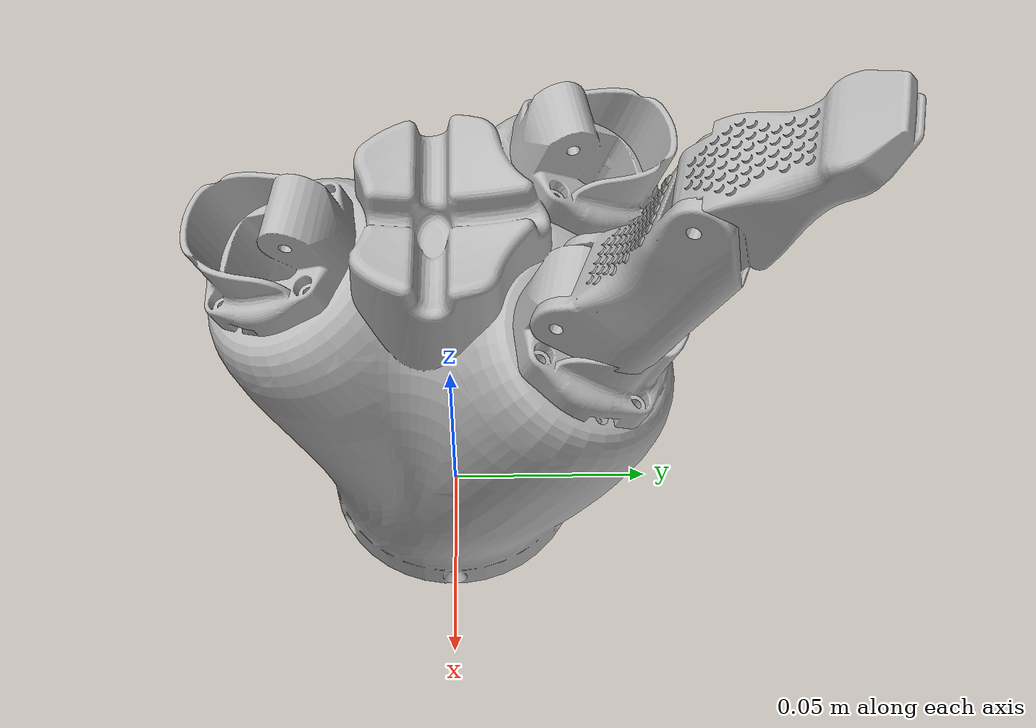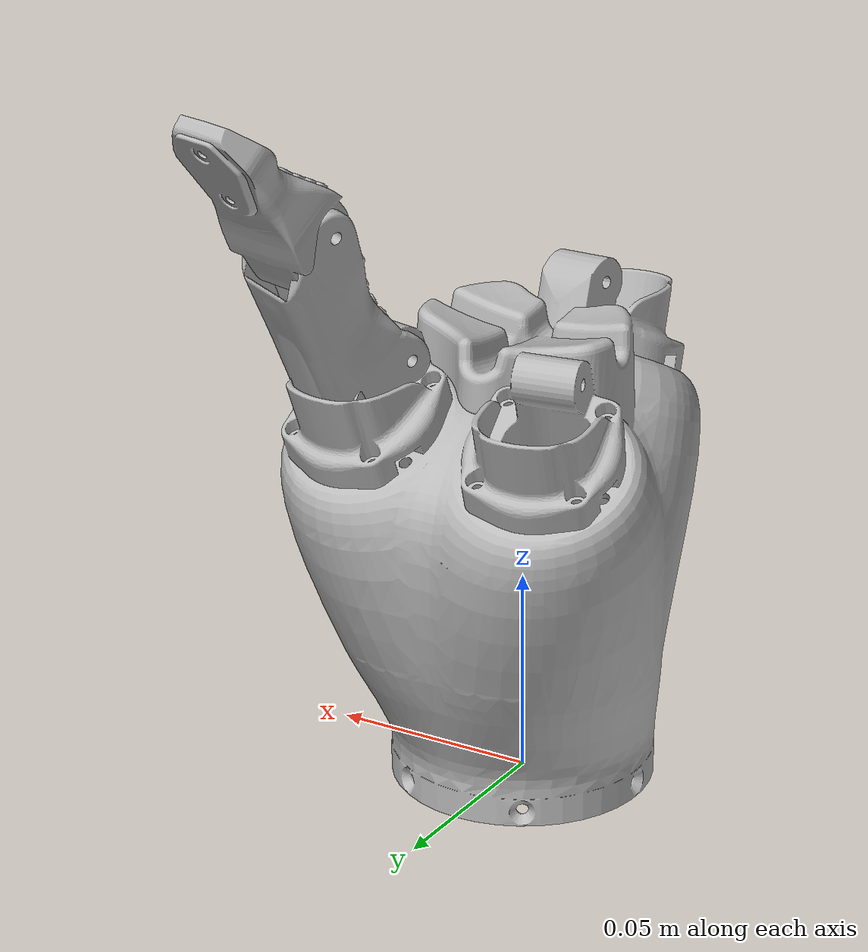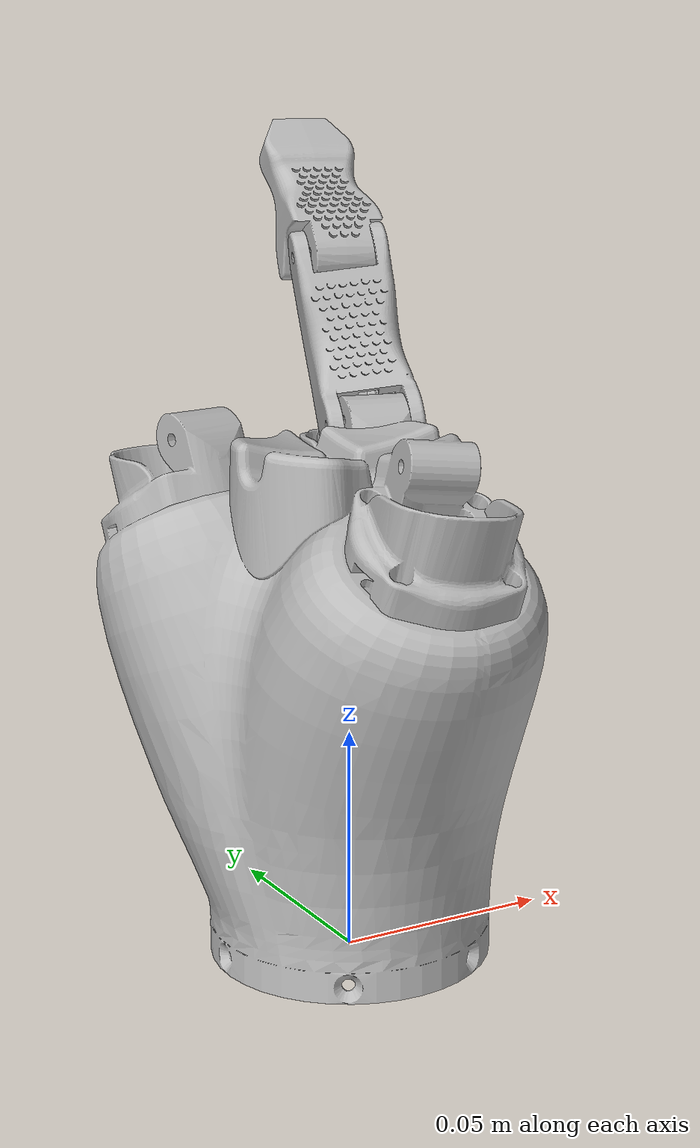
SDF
<?xml version="1.0"?>
<sdf version='1.5'>
  <model name='kinova_kg3'>
    <link name='jaco_link_hand'>
      <pose frame=''>0 0 0 0 -0 0</pose>
      <inertial>
        <pose frame=''>-0.000227691 0.00425469 0.0759514 0 -0 0</pose>
        <mass>0.121635</mass>
        <inertia>
          <ixx>0.000215057</ixx>
          <ixy>1.82062e-08</ixy>
          <ixz>1.11116e-07</ixz>
          <iyy>0.00018746</iyy>
          <iyz>1.20191e-06</iyz>
          <izz>0.000158164</izz>
        </inertia>
      </inertial>
      <collision name='jaco_link_hand_collision'>
        <pose frame=''>0 0 0 0 -0 0</pose>
        <geometry>
          <mesh>
            <scale>1 1 1</scale>
            <uri>model://kinova_kg3/meshes/jaco_link_hand.STL</uri>
          </mesh>
        </geometry>
      </collision>
      <visual name='jaco_link_hand_visual'>
        <pose frame=''>0 0 0 0 -0 0</pose>
        <geometry>
          <mesh>
            <scale>1 1 1</scale>
            <uri>model://kinova_kg3/meshes/jaco_link_hand.STL</uri>
          </mesh>
        </geometry>
      </visual>
    </link>

    <link name='jaco_link_finger_2'>
      <pose frame=''>0.0216845 0.0270991 0.114669 1.56248 -0.979965 1.39417</pose>
      <inertial>
        <pose frame=''>0.0208281 -0.00622581 -1.06167e-07 0 -0 0</pose>
        <mass>0.00888494</mass>
        <inertia>
          <ixx>1.04332e-06</ixx>
          <ixy>1.35201e-07</ixy>
          <ixz>-1.63982e-11</ixz>
          <iyy>2.40167e-06</iyy>
          <iyz>-2.0631e-12</iyz>
          <izz>2.18919e-06</izz>
        </inertia>
      </inertial>
      <collision name='jaco_link_finger_2_collision'>
        <pose frame=''>0 0 0 0 -0 0</pose>
        <geometry>
          <mesh>
            <scale>1 1 1</scale>
            <uri>model://kinova_kg3/meshes/jaco_link_finger_2.STL</uri>
          </mesh>
        </geometry>
      </collision>
      <visual name='jaco_link_finger_2_visual'>
        <pose frame=''>0 0 0 0 -0 0</pose>
        <geometry>
          <mesh>
            <scale>1 1 1</scale>
            <uri>model://kinova_kg3/meshes/jaco_link_finger_2.STL</uri>
          </mesh>
        </geometry>
      </visual>
    </link>

    <joint name='jaco_joint_finger_2' type='revolute'>
      <child>jaco_link_finger_2</child>
      <parent>jaco_link_hand</parent>
      <axis>
        <xyz>0.983195 -0.1825 0.00463032</xyz>
        <limit>
          <lower>0</lower>
          <upper>0.872665</upper>
          <effort>30</effort>
          <velocity>5</velocity>
        </limit>
        <dynamics>
          <spring_reference>0</spring_reference>
          <spring_stiffness>0</spring_stiffness>
        </dynamics>
        <use_parent_model_frame>1</use_parent_model_frame>
      </axis>
    </joint>

    <link name='jaco_link_finger_tip_2'>
      <pose frame=''>0.0260012 0.0512841 0.151295 1.56248 -0.979965 1.39417</pose>
      <inertial>
        <pose frame=''>0.0140499 -0.00605434 2.02852e-07 0 -0 0</pose>
        <mass>0.0124078</mass>
        <inertia>
          <ixx>6.83326e-07</ixx>
          <ixy>-2.81123e-07</ixy>
          <ixz>-7.46392e-12</ixz>
          <iyy>2.46927e-06</iyy>
          <iyz>1.87459e-11</iyz>
          <izz>2.36577e-06</izz>
        </inertia>
      </inertial>
      <collision name='jaco_link_finger_tip_2_collision'>
        <pose frame=''>0 0 0 0 -0 0</pose>
        <geometry>
          <mesh>
            <scale>1 1 1</scale>
            <uri>model://kinova_kg3/meshes/jaco_link_finger_tip_2.STL</uri>
          </mesh>
        </geometry>
      </collision>
      <visual name='jaco_link_finger_tip_2_visual'>
        <pose frame=''>0 0 0 0 -0 0</pose>
        <geometry>
          <mesh>
            <scale>1 1 1</scale>
            <uri>model://kinova_kg3/meshes/jaco_link_finger_tip_2.STL</uri>
          </mesh>
        </geometry>
      </visual>
    </link>

    <joint name='jaco_joint_finger_tip_2' type='revolute'>
      <child>jaco_link_finger_tip_2</child>
      <parent>jaco_link_finger_2</parent>
      <axis>
        <xyz>0.983195 -0.1825 0.00463032</xyz>
        <limit>
          <lower>0</lower>
          <upper>0.872665</upper>
          <effort>30</effort>
          <velocity>5</velocity>
        </limit>
        <dynamics>
          <spring_reference>0</spring_reference>
          <spring_stiffness>0</spring_stiffness>
        </dynamics>
        <use_parent_model_frame>1</use_parent_model_frame>
      </axis>
    </joint>

    <link name='jaco_link_finger_2_inner_1'>
      <pose frame=''>0.0213983 0.0251801 0.0889963 0.00485755 -0.307065 -1.7558</pose>
      <inertial>
        <pose frame=''>-0.00572437 6.73494e-05 0.00418469 0 -0 0</pose>
        <mass>0.00136882</mass>
        <inertia>
          <ixx>4.53246e-08</ixx>
          <ixy>-3.14487e-10</ixy>
          <ixz>-1.85243e-09</ixz>
          <iyy>2.87248e-08</iyy>
          <iyz>8.2694e-10</iyz>
          <izz>5.15648e-08</izz>
        </inertia>
      </inertial>
      <collision name='jaco_link_finger_2_inner_1_collision'>
        <pose frame=''>0 0 0 0 -0 0</pose>
        <geometry>
          <mesh>
            <scale>1 1 1</scale>
            <uri>model://kinova_kg3/meshes/jaco_link_finger_inner_1.STL</uri>
          </mesh>
        </geometry>
      </collision>
      <visual name='jaco_link_finger_2_inner_1_visual'>
        <pose frame=''>0 0 0 0 -0 0</pose>
        <geometry>
          <mesh>
            <scale>1 1 1</scale>
            <uri>model://kinova_kg3/meshes/jaco_link_finger_inner_1.STL</uri>
          </mesh>
        </geometry>
      </visual>
    </link>

    <joint name='jaco_joint_finger_2_inner_1' type='prismatic'>
      <child>jaco_link_finger_2_inner_1</child>
      <parent>jaco_link_hand</parent>
      <axis>
        <xyz>0.0508244 0.297995 0.953213</xyz>
        <limit>
          <lower>0</lower>
          <upper>0.1</upper>
          <effort>30</effort>
          <velocity>5</velocity>
        </limit>
        <dynamics>
          <spring_reference>0</spring_reference>
          <spring_stiffness>0</spring_stiffness>
        </dynamics>
        <use_parent_model_frame>1</use_parent_model_frame>
      </axis>
    </joint>

    <link name='jaco_link_finger_2_inner_2'>
      <pose frame=''>0.0231156 0.0343095 0.0949679 1.55992 -1.13111 1.39711</pose>
      <inertial>
        <pose frame=''>0.0247689 -0.000547177 -6.06988e-05 0 -0 0</pose>
        <mass>0.00285898</mass>
        <inertia>
          <ixx>4.44582e-08</ixx>
          <ixy>4.12514e-10</ixy>
          <ixz>3.49005e-09</ixz>
          <iyy>8.43548e-07</iyy>
          <iyz>-1.98061e-10</iyz>
          <izz>8.20513e-07</izz>
        </inertia>
      </inertial>
      <collision name='jaco_link_finger_2_inner_2_collision'>
        <pose frame=''>0 0 0 0 -0 0</pose>
        <geometry>
          <mesh>
            <scale>1 1 1</scale>
            <uri>model://kinova_kg3/meshes/jaco_link_finger_inner_2.STL</uri>
          </mesh>
        </geometry>
      </collision>
      <visual name='jaco_link_finger_2_inner_2_visual'>
        <pose frame=''>0 0 0 0 -0 0</pose>
        <geometry>
          <mesh>
            <scale>1 1 1</scale>
            <uri>model://kinova_kg3/meshes/jaco_link_finger_inner_2.STL</uri>
          </mesh>
        </geometry>
      </visual>
    </link>

    <joint name='jaco_joint_finger_2_inner_2' type='revolute'>
      <child>jaco_link_finger_2_inner_2</child>
      <parent>jaco_link_finger_2_inner_1</parent>
      <axis>
        <xyz>-0.983195 0.1825 -0.00463032</xyz>
        <limit>
          <lower>0</lower>
          <upper>0.261799</upper>
          <effort>30</effort>
          <velocity>5</velocity>
        </limit>
        <dynamics>
          <spring_reference>0</spring_reference>
          <spring_stiffness>0</spring_stiffness>
        </dynamics>
        <use_parent_model_frame>1</use_parent_model_frame>
      </axis>
    </joint>

    <joint name='jaco_joint_finger_2_inner_3' type='revolute'>
	  <child>jaco_link_finger_tip_2</child>
      <parent>jaco_link_finger_2_inner_2</parent>
	  <pose>-0.00603 -0.00941 0 0 0 0</pose>
      <axis>
        <xyz>-0.983195 0.1825 -0.00463032</xyz>
        <limit>
          <lower>-1.14319066</lower>
          <upper>0</upper>
          <effort>30</effort>
          <velocity>5</velocity>
        </limit>
        <dynamics>
          <spring_reference>0</spring_reference>
          <spring_stiffness>0</spring_stiffness>
        </dynamics>
        <use_parent_model_frame>1</use_parent_model_frame>
      </axis>
    </joint>

 </model>
</sdf>
